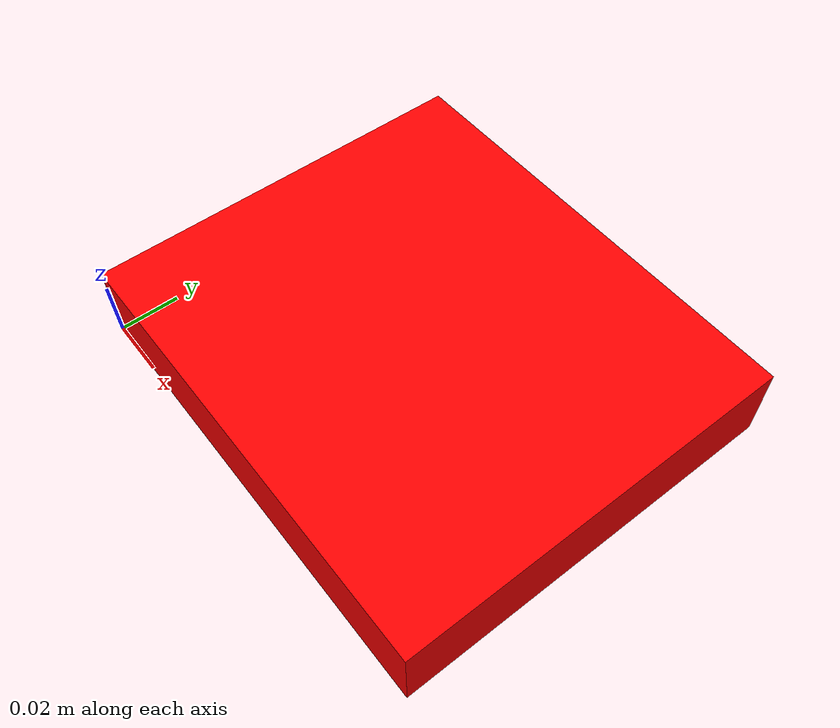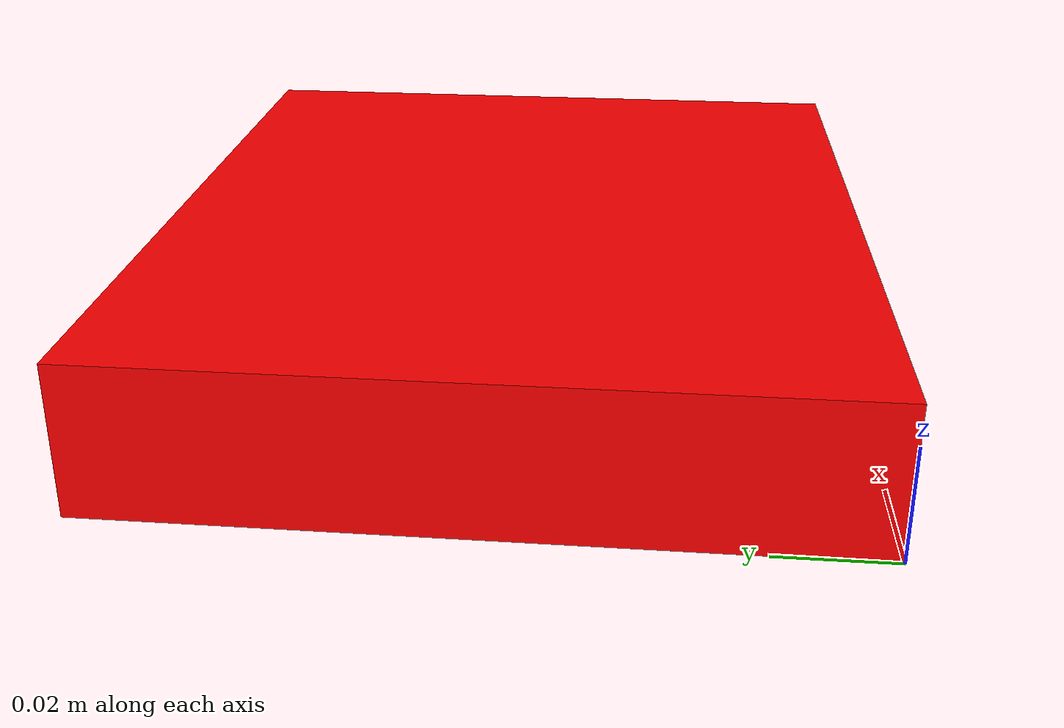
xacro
<?xml version="1.0"?>

<robot name="Zona_Alimentacion">
      <link name="world">
      </link>

      <joint name="joint_name" type="fixed">
        <parent link="world"/>
        <child link="alimentacion"/>
        <origin xyz="0.0 0.0 0.0" rpy="0.0 0.0 0.0"/>
      </joint>

      <link name="alimentacion">
        <inertial>
          <origin xyz="0.0 0.0 0.0" rpy="0.0 0.0 0.0" />
          <mass value="0.353" />
          <inertia  ixx="0.000518226" ixy="0.0"  ixz="0.0"  iyy="0.000682845"  iyz="0.0"  izz="0.001158212" />
        </inertial>
        <visual>
          <origin rpy="0.0 0.0 0.0" xyz="0.0 0.0 0.0" />
         <geometry>
           <mesh filename="package://ProyectoInt/meshes/ZonaAlimentacion.stl" />
         </geometry>
         <material name="red">
          <color rgba="1.0 0.0 0.0 1.0"/>
         </material>
       </visual>
       <collision>
         <origin xyz="0.0 0.0 0.0" rpy="0.0 0.0 0.0" />
         <geometry>
           <mesh filename="package://ProyectoInt/meshes/ZonaAlimentacion.stl"/>
         </geometry>
       </collision>
     </link>
     <gazebo reference="alimentacion">
       <material>Gazebo/Green</material>
     </gazebo>
</robot>
